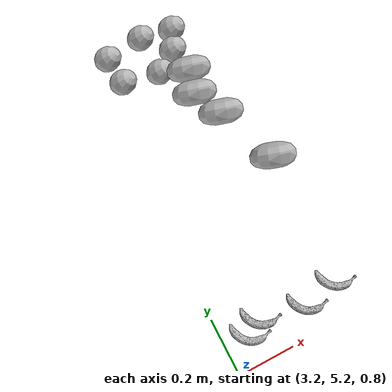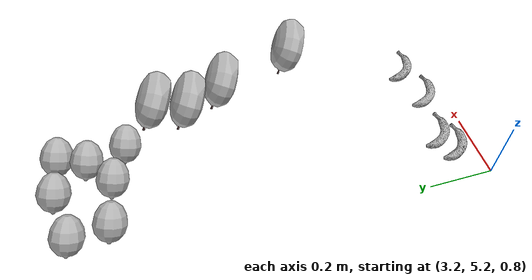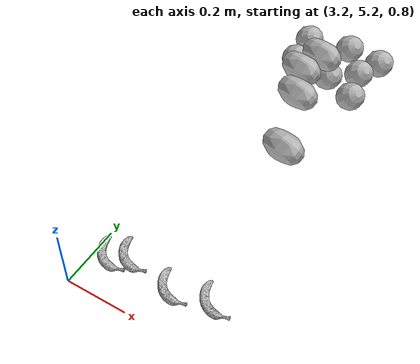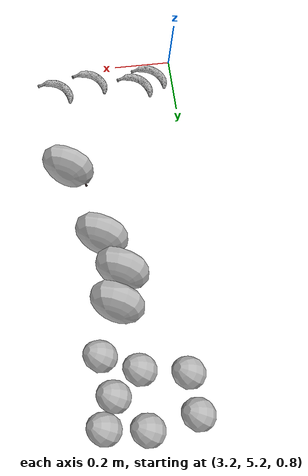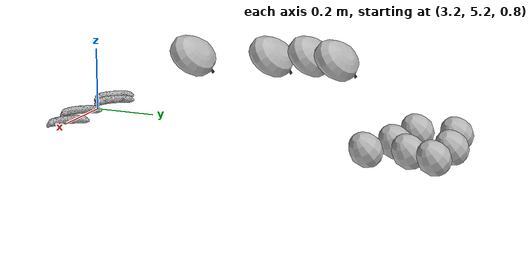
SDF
<sdf version="1.6">
 <world name="default">
  <model name="banana_clone">
   <link name="link_0">
    <inertial>
     <mass>1</mass>
     <inertia>
      <ixx>0.166667</ixx>
      <ixy>0</ixy>
      <ixz>0</ixz>
      <iyy>0.166667</iyy>
      <iyz>0</iyz>
      <izz>0.166667</izz>
     </inertia>
    </inertial>
    <visual name="visual">
     <geometry><mesh><uri>model://banana/meshes/banana.dae</uri><scale>1 1 1</scale></mesh></geometry>
    </visual>
    <collision name="collision">
     <geometry><mesh><uri>model://banana/meshes/banana.dae</uri><scale>1 1 1</scale></mesh></geometry>
     <surface>
      <friction>
       <ode><mu>1</mu><mu2>1</mu2><fdir1>0 0 0</fdir1><slip1>0</slip1><slip2>0</slip2></ode>
       <torsional>
        <coefficient>1</coefficient>
        <patch_radius>0</patch_radius>
        <surface_radius>0</surface_radius>
        <use_patch_radius>1</use_patch_radius>
        <ode><slip>0</slip></ode>
       </torsional>
      </friction>
      <bounce><restitution_coefficient>0</restitution_coefficient><threshold>1e+06</threshold></bounce>
      <contact>
       <collide_without_contact>0</collide_without_contact>
       <collide_without_contact_bitmask>1</collide_without_contact_bitmask>
       <collide_bitmask>1</collide_bitmask>
       <ode>
        <soft_cfm>0</soft_cfm>
        <soft_erp>0.2</soft_erp>
        <kp>1e+13</kp>
        <kd>1</kd>
        <max_vel>0.01</max_vel>
        <min_depth>0</min_depth>
       </ode>
       <bullet>
        <split_impulse>1</split_impulse>
        <split_impulse_penetration_threshold>-0.01</split_impulse_penetration_threshold>
        <soft_cfm>0</soft_cfm>
        <soft_erp>0.2</soft_erp>
        <kp>1e+13</kp>
        <kd>1</kd>
       </bullet>
      </contact>
     </surface>
    </collision>
   </link>
   <static>1</static>
   <pose>3.60533 5.30959 0.868134 0 -0 0</pose>
  </model>
  <model name="banana_clone_9">
   <link name="link_0">
    <inertial>
     <mass>1</mass>
     <inertia>
      <ixx>0.166667</ixx>
      <ixy>0</ixy>
      <ixz>0</ixz>
      <iyy>0.166667</iyy>
      <iyz>0</iyz>
      <izz>0.166667</izz>
     </inertia>
    </inertial>
    <visual name="visual">
     <geometry><mesh><uri>model://banana/meshes/banana.dae</uri><scale>1 1 1</scale></mesh></geometry>
    </visual>
    <collision name="collision">
     <geometry><mesh><uri>model://banana/meshes/banana.dae</uri><scale>1 1 1</scale></mesh></geometry>
     <surface>
      <friction>
       <ode><mu>1</mu><mu2>1</mu2><fdir1>0 0 0</fdir1><slip1>0</slip1><slip2>0</slip2></ode>
       <torsional>
        <coefficient>1</coefficient>
        <patch_radius>0</patch_radius>
        <surface_radius>0</surface_radius>
        <use_patch_radius>1</use_patch_radius>
        <ode><slip>0</slip></ode>
       </torsional>
      </friction>
      <bounce><restitution_coefficient>0</restitution_coefficient><threshold>1e+06</threshold></bounce>
      <contact>
       <collide_without_contact>0</collide_without_contact>
       <collide_without_contact_bitmask>1</collide_without_contact_bitmask>
       <collide_bitmask>1</collide_bitmask>
       <ode>
        <soft_cfm>0</soft_cfm>
        <soft_erp>0.2</soft_erp>
        <kp>1e+13</kp>
        <kd>1</kd>
        <max_vel>0.01</max_vel>
        <min_depth>0</min_depth>
       </ode>
       <bullet>
        <split_impulse>1</split_impulse>
        <split_impulse_penetration_threshold>-0.01</split_impulse_penetration_threshold>
        <soft_cfm>0</soft_cfm>
        <soft_erp>0.2</soft_erp>
        <kp>1e+13</kp>
        <kd>1</kd>
       </bullet>
      </contact>
     </surface>
    </collision>
   </link>
   <static>1</static>
   <pose>3.48243 5.28531 0.868134 0 -0 0</pose>
  </model>
  <model name="banana_clone_13">
   <link name="link_0">
    <inertial>
     <mass>1</mass>
     <inertia>
      <ixx>0.166667</ixx>
      <ixy>0</ixy>
      <ixz>0</ixz>
      <iyy>0.166667</iyy>
      <iyz>0</iyz>
      <izz>0.166667</izz>
     </inertia>
    </inertial>
    <visual name="visual">
     <geometry><mesh><uri>model://banana/meshes/banana.dae</uri><scale>1 1 1</scale></mesh></geometry>
    </visual>
    <collision name="collision">
     <geometry><mesh><uri>model://banana/meshes/banana.dae</uri><scale>1 1 1</scale></mesh></geometry>
     <surface>
      <friction>
       <ode><mu>1</mu><mu2>1</mu2><fdir1>0 0 0</fdir1><slip1>0</slip1><slip2>0</slip2></ode>
       <torsional>
        <coefficient>1</coefficient>
        <patch_radius>0</patch_radius>
        <surface_radius>0</surface_radius>
        <use_patch_radius>1</use_patch_radius>
        <ode><slip>0</slip></ode>
       </torsional>
      </friction>
      <bounce><restitution_coefficient>0</restitution_coefficient><threshold>1e+06</threshold></bounce>
      <contact>
       <collide_without_contact>0</collide_without_contact>
       <collide_without_contact_bitmask>1</collide_without_contact_bitmask>
       <collide_bitmask>1</collide_bitmask>
       <ode>
        <soft_cfm>0</soft_cfm>
        <soft_erp>0.2</soft_erp>
        <kp>1e+13</kp>
        <kd>1</kd>
        <max_vel>0.01</max_vel>
        <min_depth>0</min_depth>
       </ode>
       <bullet>
        <split_impulse>1</split_impulse>
        <split_impulse_penetration_threshold>-0.01</split_impulse_penetration_threshold>
        <soft_cfm>0</soft_cfm>
        <soft_erp>0.2</soft_erp>
        <kp>1e+13</kp>
        <kd>1</kd>
       </bullet>
      </contact>
     </surface>
    </collision>
   </link>
   <static>1</static>
   <pose>3.27114 5.28685 0.868134 0 -0 0</pose>
  </model>
  <model name="banana_clone_22">
   <link name="link_0">
    <inertial>
     <mass>1</mass>
     <inertia>
      <ixx>0.166667</ixx>
      <ixy>0</ixy>
      <ixz>0</ixz>
      <iyy>0.166667</iyy>
      <iyz>0</iyz>
      <izz>0.166667</izz>
     </inertia>
    </inertial>
    <visual name="visual">
     <geometry><mesh><uri>model://banana/meshes/banana.dae</uri><scale>1 1 1</scale></mesh></geometry>
    </visual>
    <collision name="collision">
     <geometry><mesh><uri>model://banana/meshes/banana.dae</uri><scale>1 1 1</scale></mesh></geometry>
     <surface>
      <friction>
       <ode><mu>1</mu><mu2>1</mu2><fdir1>0 0 0</fdir1><slip1>0</slip1><slip2>0</slip2></ode>
       <torsional>
        <coefficient>1</coefficient>
        <patch_radius>0</patch_radius>
        <surface_radius>0</surface_radius>
        <use_patch_radius>1</use_patch_radius>
        <ode><slip>0</slip></ode>
       </torsional>
      </friction>
      <bounce><restitution_coefficient>0</restitution_coefficient><threshold>1e+06</threshold></bounce>
      <contact>
       <collide_without_contact>0</collide_without_contact>
       <collide_without_contact_bitmask>1</collide_without_contact_bitmask>
       <collide_bitmask>1</collide_bitmask>
       <ode>
        <soft_cfm>0</soft_cfm>
        <soft_erp>0.2</soft_erp>
        <kp>1e+13</kp>
        <kd>1</kd>
        <max_vel>0.01</max_vel>
        <min_depth>0</min_depth>
       </ode>
       <bullet>
        <split_impulse>1</split_impulse>
        <split_impulse_penetration_threshold>-0.01</split_impulse_penetration_threshold>
        <soft_cfm>0</soft_cfm>
        <soft_erp>0.2</soft_erp>
        <kp>1e+13</kp>
        <kd>1</kd>
       </bullet>
      </contact>
     </surface>
    </collision>
   </link>
   <static>1</static>
   <pose>3.32533 5.31606 0.868134 0 -0 0</pose>
  </model>
  <model name="lime_clone_0">
   <link name="link_0">
    <inertial>
     <mass>1</mass>
     <inertia>
      <ixx>0.166667</ixx>
      <ixy>0</ixy>
      <ixz>0</ixz>
      <iyy>0.166667</iyy>
      <iyz>0</iyz>
      <izz>0.166667</izz>
     </inertia>
    </inertial>
    <visual name="visual">
     <geometry><mesh><uri>model://lime/meshes/lime.dae</uri><scale>1 1 1</scale></mesh></geometry>
    </visual>
    <collision name="collision">
     <geometry><mesh><uri>model://lime/meshes/lime.dae</uri><scale>1 1 1</scale></mesh></geometry>
     <surface>
      <friction>
       <ode><mu>1</mu><mu2>1</mu2><fdir1>0 0 0</fdir1><slip1>0</slip1><slip2>0</slip2></ode>
       <torsional>
        <coefficient>1</coefficient>
        <patch_radius>0</patch_radius>
        <surface_radius>0</surface_radius>
        <use_patch_radius>1</use_patch_radius>
        <ode><slip>0</slip></ode>
       </torsional>
      </friction>
      <bounce><restitution_coefficient>0</restitution_coefficient><threshold>1e+06</threshold></bounce>
      <contact>
       <collide_without_contact>0</collide_without_contact>
       <collide_without_contact_bitmask>1</collide_without_contact_bitmask>
       <collide_bitmask>1</collide_bitmask>
       <ode>
        <soft_cfm>0</soft_cfm>
        <soft_erp>0.2</soft_erp>
        <kp>1e+13</kp>
        <kd>1</kd>
        <max_vel>0.01</max_vel>
        <min_depth>0</min_depth>
       </ode>
       <bullet>
        <split_impulse>1</split_impulse>
        <split_impulse_penetration_threshold>-0.01</split_impulse_penetration_threshold>
        <soft_cfm>0</soft_cfm>
        <soft_erp>0.2</soft_erp>
        <kp>1e+13</kp>
        <kd>1</kd>
       </bullet>
      </contact>
     </surface>
    </collision>
   </link>
   <static>1</static>
   <pose>3.54528 6.2031 0.896084 0 -0 0</pose>
  </model>
  <model name="lime_clone_2">
   <link name="link_0">
    <inertial>
     <mass>1</mass>
     <inertia>
      <ixx>0.166667</ixx>
      <ixy>0</ixy>
      <ixz>0</ixz>
      <iyy>0.166667</iyy>
      <iyz>0</iyz>
      <izz>0.166667</izz>
     </inertia>
    </inertial>
    <visual name="visual">
     <geometry><mesh><uri>model://lime/meshes/lime.dae</uri><scale>1 1 1</scale></mesh></geometry>
    </visual>
    <collision name="collision">
     <geometry><mesh><uri>model://lime/meshes/lime.dae</uri><scale>1 1 1</scale></mesh></geometry>
     <surface>
      <friction>
       <ode><mu>1</mu><mu2>1</mu2><fdir1>0 0 0</fdir1><slip1>0</slip1><slip2>0</slip2></ode>
       <torsional>
        <coefficient>1</coefficient>
        <patch_radius>0</patch_radius>
        <surface_radius>0</surface_radius>
        <use_patch_radius>1</use_patch_radius>
        <ode><slip>0</slip></ode>
       </torsional>
      </friction>
      <bounce><restitution_coefficient>0</restitution_coefficient><threshold>1e+06</threshold></bounce>
      <contact>
       <collide_without_contact>0</collide_without_contact>
       <collide_without_contact_bitmask>1</collide_without_contact_bitmask>
       <collide_bitmask>1</collide_bitmask>
       <ode>
        <soft_cfm>0</soft_cfm>
        <soft_erp>0.2</soft_erp>
        <kp>1e+13</kp>
        <kd>1</kd>
        <max_vel>0.01</max_vel>
        <min_depth>0</min_depth>
       </ode>
       <bullet>
        <split_impulse>1</split_impulse>
        <split_impulse_penetration_threshold>-0.01</split_impulse_penetration_threshold>
        <soft_cfm>0</soft_cfm>
        <soft_erp>0.2</soft_erp>
        <kp>1e+13</kp>
        <kd>1</kd>
       </bullet>
      </contact>
     </surface>
    </collision>
   </link>
   <static>1</static>
   <pose>3.51821 6.31889 0.896084 0 -0 0</pose>
  </model>
  <model name="lime_clone_1">
   <link name="link_0">
    <inertial>
     <mass>1</mass>
     <inertia>
      <ixx>0.166667</ixx>
      <ixy>0</ixy>
      <ixz>0</ixz>
      <iyy>0.166667</iyy>
      <iyz>0</iyz>
      <izz>0.166667</izz>
     </inertia>
    </inertial>
    <visual name="visual">
     <geometry><mesh><uri>model://lime/meshes/lime.dae</uri><scale>1 1 1</scale></mesh></geometry>
    </visual>
    <collision name="collision">
     <geometry><mesh><uri>model://lime/meshes/lime.dae</uri><scale>1 1 1</scale></mesh></geometry>
     <surface>
      <friction>
       <ode><mu>1</mu><mu2>1</mu2><fdir1>0 0 0</fdir1><slip1>0</slip1><slip2>0</slip2></ode>
       <torsional>
        <coefficient>1</coefficient>
        <patch_radius>0</patch_radius>
        <surface_radius>0</surface_radius>
        <use_patch_radius>1</use_patch_radius>
        <ode><slip>0</slip></ode>
       </torsional>
      </friction>
      <bounce><restitution_coefficient>0</restitution_coefficient><threshold>1e+06</threshold></bounce>
      <contact>
       <collide_without_contact>0</collide_without_contact>
       <collide_without_contact_bitmask>1</collide_without_contact_bitmask>
       <collide_bitmask>1</collide_bitmask>
       <ode>
        <soft_cfm>0</soft_cfm>
        <soft_erp>0.2</soft_erp>
        <kp>1e+13</kp>
        <kd>1</kd>
        <max_vel>0.01</max_vel>
        <min_depth>0</min_depth>
       </ode>
       <bullet>
        <split_impulse>1</split_impulse>
        <split_impulse_penetration_threshold>-0.01</split_impulse_penetration_threshold>
        <soft_cfm>0</soft_cfm>
        <soft_erp>0.2</soft_erp>
        <kp>1e+13</kp>
        <kd>1</kd>
       </bullet>
      </contact>
     </surface>
    </collision>
   </link>
   <static>1</static>
   <pose>3.55424 6.40148 0.896084 0 -0 0</pose>
  </model>
  <model name="lime_clone_3">
   <link name="link_0">
    <inertial>
     <mass>1</mass>
     <inertia>
      <ixx>0.166667</ixx>
      <ixy>0</ixy>
      <ixz>0</ixz>
      <iyy>0.166667</iyy>
      <iyz>0</iyz>
      <izz>0.166667</izz>
     </inertia>
    </inertial>
    <visual name="visual">
     <geometry><mesh><uri>model://lime/meshes/lime.dae</uri><scale>1 1 1</scale></mesh></geometry>
    </visual>
    <collision name="collision">
     <geometry><mesh><uri>model://lime/meshes/lime.dae</uri><scale>1 1 1</scale></mesh></geometry>
     <surface>
      <friction>
       <ode><mu>1</mu><mu2>1</mu2><fdir1>0 0 0</fdir1><slip1>0</slip1><slip2>0</slip2></ode>
       <torsional>
        <coefficient>1</coefficient>
        <patch_radius>0</patch_radius>
        <surface_radius>0</surface_radius>
        <use_patch_radius>1</use_patch_radius>
        <ode><slip>0</slip></ode>
       </torsional>
      </friction>
      <bounce><restitution_coefficient>0</restitution_coefficient><threshold>1e+06</threshold></bounce>
      <contact>
       <collide_without_contact>0</collide_without_contact>
       <collide_without_contact_bitmask>1</collide_without_contact_bitmask>
       <collide_bitmask>1</collide_bitmask>
       <ode>
        <soft_cfm>0</soft_cfm>
        <soft_erp>0.2</soft_erp>
        <kp>1e+13</kp>
        <kd>1</kd>
        <max_vel>0.01</max_vel>
        <min_depth>0</min_depth>
       </ode>
       <bullet>
        <split_impulse>1</split_impulse>
        <split_impulse_penetration_threshold>-0.01</split_impulse_penetration_threshold>
        <soft_cfm>0</soft_cfm>
        <soft_erp>0.2</soft_erp>
        <kp>1e+13</kp>
        <kd>1</kd>
       </bullet>
      </contact>
     </surface>
    </collision>
   </link>
   <static>1</static>
   <pose>3.43211 6.41823 0.896084 0 -0 0</pose>
  </model>
  <model name="lime_clone_4">
   <link name="link_0">
    <inertial>
     <mass>1</mass>
     <inertia>
      <ixx>0.166667</ixx>
      <ixy>0</ixy>
      <ixz>0</ixz>
      <iyy>0.166667</iyy>
      <iyz>0</iyz>
      <izz>0.166667</izz>
     </inertia>
    </inertial>
    <visual name="visual">
     <geometry><mesh><uri>model://lime/meshes/lime.dae</uri><scale>1 1 1</scale></mesh></geometry>
    </visual>
    <collision name="collision">
     <geometry><mesh><uri>model://lime/meshes/lime.dae</uri><scale>1 1 1</scale></mesh></geometry>
     <surface>
      <friction>
       <ode><mu>1</mu><mu2>1</mu2><fdir1>0 0 0</fdir1><slip1>0</slip1><slip2>0</slip2></ode>
       <torsional>
        <coefficient>1</coefficient>
        <patch_radius>0</patch_radius>
        <surface_radius>0</surface_radius>
        <use_patch_radius>1</use_patch_radius>
        <ode><slip>0</slip></ode>
       </torsional>
      </friction>
      <bounce><restitution_coefficient>0</restitution_coefficient><threshold>1e+06</threshold></bounce>
      <contact>
       <collide_without_contact>0</collide_without_contact>
       <collide_without_contact_bitmask>1</collide_without_contact_bitmask>
       <collide_bitmask>1</collide_bitmask>
       <ode>
        <soft_cfm>0</soft_cfm>
        <soft_erp>0.2</soft_erp>
        <kp>1e+13</kp>
        <kd>1</kd>
        <max_vel>0.01</max_vel>
        <min_depth>0</min_depth>
       </ode>
       <bullet>
        <split_impulse>1</split_impulse>
        <split_impulse_penetration_threshold>-0.01</split_impulse_penetration_threshold>
        <soft_cfm>0</soft_cfm>
        <soft_erp>0.2</soft_erp>
        <kp>1e+13</kp>
        <kd>1</kd>
       </bullet>
      </contact>
     </surface>
    </collision>
   </link>
   <static>1</static>
   <pose>3.43423 6.2537 0.896084 0 -0 0</pose>
  </model>
  <model name="lime_clone_5">
   <link name="link_0">
    <inertial>
     <mass>1</mass>
     <inertia>
      <ixx>0.166667</ixx>
      <ixy>0</ixy>
      <ixz>0</ixz>
      <iyy>0.166667</iyy>
      <iyz>0</iyz>
      <izz>0.166667</izz>
     </inertia>
    </inertial>
    <visual name="visual">
     <geometry><mesh><uri>model://lime/meshes/lime.dae</uri><scale>1 1 1</scale></mesh></geometry>
    </visual>
    <collision name="collision">
     <geometry><mesh><uri>model://lime/meshes/lime.dae</uri><scale>1 1 1</scale></mesh></geometry>
     <surface>
      <friction>
       <ode><mu>1</mu><mu2>1</mu2><fdir1>0 0 0</fdir1><slip1>0</slip1><slip2>0</slip2></ode>
       <torsional>
        <coefficient>1</coefficient>
        <patch_radius>0</patch_radius>
        <surface_radius>0</surface_radius>
        <use_patch_radius>1</use_patch_radius>
        <ode><slip>0</slip></ode>
       </torsional>
      </friction>
      <bounce><restitution_coefficient>0</restitution_coefficient><threshold>1e+06</threshold></bounce>
      <contact>
       <collide_without_contact>0</collide_without_contact>
       <collide_without_contact_bitmask>1</collide_without_contact_bitmask>
       <collide_bitmask>1</collide_bitmask>
       <ode>
        <soft_cfm>0</soft_cfm>
        <soft_erp>0.2</soft_erp>
        <kp>1e+13</kp>
        <kd>1</kd>
        <max_vel>0.01</max_vel>
        <min_depth>0</min_depth>
       </ode>
       <bullet>
        <split_impulse>1</split_impulse>
        <split_impulse_penetration_threshold>-0.01</split_impulse_penetration_threshold>
        <soft_cfm>0</soft_cfm>
        <soft_erp>0.2</soft_erp>
        <kp>1e+13</kp>
        <kd>1</kd>
       </bullet>
      </contact>
     </surface>
    </collision>
   </link>
   <static>1</static>
   <pose>3.29477 6.27779 0.896084 0 -0 0</pose>
  </model>
  <model name="lime_clone_6">
   <link name="link_0">
    <inertial>
     <mass>1</mass>
     <inertia>
      <ixx>0.166667</ixx>
      <ixy>0</ixy>
      <ixz>0</ixz>
      <iyy>0.166667</iyy>
      <iyz>0</iyz>
      <izz>0.166667</izz>
     </inertia>
    </inertial>
    <visual name="visual">
     <geometry><mesh><uri>model://lime/meshes/lime.dae</uri><scale>1 1 1</scale></mesh></geometry>
    </visual>
    <collision name="collision">
     <geometry><mesh><uri>model://lime/meshes/lime.dae</uri><scale>1 1 1</scale></mesh></geometry>
     <surface>
      <friction>
       <ode><mu>1</mu><mu2>1</mu2><fdir1>0 0 0</fdir1><slip1>0</slip1><slip2>0</slip2></ode>
       <torsional>
        <coefficient>1</coefficient>
        <patch_radius>0</patch_radius>
        <surface_radius>0</surface_radius>
        <use_patch_radius>1</use_patch_radius>
        <ode><slip>0</slip></ode>
       </torsional>
      </friction>
      <bounce><restitution_coefficient>0</restitution_coefficient><threshold>1e+06</threshold></bounce>
      <contact>
       <collide_without_contact>0</collide_without_contact>
       <collide_without_contact_bitmask>1</collide_without_contact_bitmask>
       <collide_bitmask>1</collide_bitmask>
       <ode>
        <soft_cfm>0</soft_cfm>
        <soft_erp>0.2</soft_erp>
        <kp>1e+13</kp>
        <kd>1</kd>
        <max_vel>0.01</max_vel>
        <min_depth>0</min_depth>
       </ode>
       <bullet>
        <split_impulse>1</split_impulse>
        <split_impulse_penetration_threshold>-0.01</split_impulse_penetration_threshold>
        <soft_cfm>0</soft_cfm>
        <soft_erp>0.2</soft_erp>
        <kp>1e+13</kp>
        <kd>1</kd>
       </bullet>
      </contact>
     </surface>
    </collision>
   </link>
   <static>1</static>
   <pose>3.28508 6.39278 0.896084 0 -0 0</pose>
  </model>
  <model name="mango">
   <link name="link_0">
    <inertial>
     <mass>1</mass>
     <inertia>
      <ixx>0.166667</ixx>
      <ixy>0</ixy>
      <ixz>0</ixz>
      <iyy>0.166667</iyy>
      <iyz>0</iyz>
      <izz>0.166667</izz>
     </inertia>
    </inertial>
    <visual name="visual">
     <geometry><mesh><uri>model://mango/meshes/mango.dae</uri><scale>1 1 1</scale></mesh></geometry>
    </visual>
    <collision name="collision">
     <geometry><mesh><uri>model://mango/meshes/mango.dae</uri><scale>1 1 1</scale></mesh></geometry>
     <surface>
      <friction>
       <ode><mu>1</mu><mu2>1</mu2><fdir1>0 0 0</fdir1><slip1>0</slip1><slip2>0</slip2></ode>
       <torsional>
        <coefficient>1</coefficient>
        <patch_radius>0</patch_radius>
        <surface_radius>0</surface_radius>
        <use_patch_radius>1</use_patch_radius>
        <ode><slip>0</slip></ode>
       </torsional>
      </friction>
      <bounce><restitution_coefficient>0</restitution_coefficient><threshold>1e+06</threshold></bounce>
      <contact>
       <collide_without_contact>0</collide_without_contact>
       <collide_without_contact_bitmask>1</collide_without_contact_bitmask>
       <collide_bitmask>1</collide_bitmask>
       <ode>
        <soft_cfm>0</soft_cfm>
        <soft_erp>0.2</soft_erp>
        <kp>1e+13</kp>
        <kd>1</kd>
        <max_vel>0.01</max_vel>
        <min_depth>0</min_depth>
       </ode>
       <bullet>
        <split_impulse>1</split_impulse>
        <split_impulse_penetration_threshold>-0.01</split_impulse_penetration_threshold>
        <soft_cfm>0</soft_cfm>
        <soft_erp>0.2</soft_erp>
        <kp>1e+13</kp>
        <kd>1</kd>
       </bullet>
      </contact>
     </surface>
    </collision>
   </link>
   <static>1</static>
   <pose>3.53398 5.93628 1.08404 0 -0 0</pose>
  </model>
  <model name="mango_clone_1">
   <link name="link_0">
    <inertial>
     <mass>1</mass>
     <inertia>
      <ixx>0.166667</ixx>
      <ixy>0</ixy>
      <ixz>0</ixz>
      <iyy>0.166667</iyy>
      <iyz>0</iyz>
      <izz>0.166667</izz>
     </inertia>
    </inertial>
    <visual name="visual">
     <geometry><mesh><uri>model://mango/meshes/mango.dae</uri><scale>1 1 1</scale></mesh></geometry>
    </visual>
    <collision name="collision">
     <geometry><mesh><uri>model://mango/meshes/mango.dae</uri><scale>1 1 1</scale></mesh></geometry>
     <surface>
      <friction>
       <ode><mu>1</mu><mu2>1</mu2><fdir1>0 0 0</fdir1><slip1>0</slip1><slip2>0</slip2></ode>
       <torsional>
        <coefficient>1</coefficient>
        <patch_radius>0</patch_radius>
        <surface_radius>0</surface_radius>
        <use_patch_radius>1</use_patch_radius>
        <ode><slip>0</slip></ode>
       </torsional>
      </friction>
      <bounce><restitution_coefficient>0</restitution_coefficient><threshold>1e+06</threshold></bounce>
      <contact>
       <collide_without_contact>0</collide_without_contact>
       <collide_without_contact_bitmask>1</collide_without_contact_bitmask>
       <collide_bitmask>1</collide_bitmask>
       <ode>
        <soft_cfm>0</soft_cfm>
        <soft_erp>0.2</soft_erp>
        <kp>1e+13</kp>
        <kd>1</kd>
        <max_vel>0.01</max_vel>
        <min_depth>0</min_depth>
       </ode>
       <bullet>
        <split_impulse>1</split_impulse>
        <split_impulse_penetration_threshold>-0.01</split_impulse_penetration_threshold>
        <soft_cfm>0</soft_cfm>
        <soft_erp>0.2</soft_erp>
        <kp>1e+13</kp>
        <kd>1</kd>
       </bullet>
      </contact>
     </surface>
    </collision>
   </link>
   <static>1</static>
   <pose>3.51286 6.12456 1.08404 0 -0 0</pose>
  </model>
  <model name="mango_clone_2">
   <link name="link_0">
    <inertial>
     <mass>1</mass>
     <inertia>
      <ixx>0.166667</ixx>
      <ixy>0</ixy>
      <ixz>0</ixz>
      <iyy>0.166667</iyy>
      <iyz>0</iyz>
      <izz>0.166667</izz>
     </inertia>
    </inertial>
    <visual name="visual">
     <geometry><mesh><uri>model://mango/meshes/mango.dae</uri><scale>1 1 1</scale></mesh></geometry>
    </visual>
    <collision name="collision">
     <geometry><mesh><uri>model://mango/meshes/mango.dae</uri><scale>1 1 1</scale></mesh></geometry>
     <surface>
      <friction>
       <ode><mu>1</mu><mu2>1</mu2><fdir1>0 0 0</fdir1><slip1>0</slip1><slip2>0</slip2></ode>
       <torsional>
        <coefficient>1</coefficient>
        <patch_radius>0</patch_radius>
        <surface_radius>0</surface_radius>
        <use_patch_radius>1</use_patch_radius>
        <ode><slip>0</slip></ode>
       </torsional>
      </friction>
      <bounce><restitution_coefficient>0</restitution_coefficient><threshold>1e+06</threshold></bounce>
      <contact>
       <collide_without_contact>0</collide_without_contact>
       <collide_without_contact_bitmask>1</collide_without_contact_bitmask>
       <collide_bitmask>1</collide_bitmask>
       <ode>
        <soft_cfm>0</soft_cfm>
        <soft_erp>0.2</soft_erp>
        <kp>1e+13</kp>
        <kd>1</kd>
        <max_vel>0.01</max_vel>
        <min_depth>0</min_depth>
       </ode>
       <bullet>
        <split_impulse>1</split_impulse>
        <split_impulse_penetration_threshold>-0.01</split_impulse_penetration_threshold>
        <soft_cfm>0</soft_cfm>
        <soft_erp>0.2</soft_erp>
        <kp>1e+13</kp>
        <kd>1</kd>
       </bullet>
      </contact>
     </surface>
    </collision>
   </link>
   <static>1</static>
   <pose>3.48981 6.03714 1.08404 0 -0 0</pose>
  </model>
  <model name="mango_clone_3">
   <link name="link_0">
    <inertial>
     <mass>1</mass>
     <inertia>
      <ixx>0.166667</ixx>
      <ixy>0</ixy>
      <ixz>0</ixz>
      <iyy>0.166667</iyy>
      <iyz>0</iyz>
      <izz>0.166667</izz>
     </inertia>
    </inertial>
    <visual name="visual">
     <geometry><mesh><uri>model://mango/meshes/mango.dae</uri><scale>1 1 1</scale></mesh></geometry>
    </visual>
    <collision name="collision">
     <geometry><mesh><uri>model://mango/meshes/mango.dae</uri><scale>1 1 1</scale></mesh></geometry>
     <surface>
      <friction>
       <ode><mu>1</mu><mu2>1</mu2><fdir1>0 0 0</fdir1><slip1>0</slip1><slip2>0</slip2></ode>
       <torsional>
        <coefficient>1</coefficient>
        <patch_radius>0</patch_radius>
        <surface_radius>0</surface_radius>
        <use_patch_radius>1</use_patch_radius>
        <ode><slip>0</slip></ode>
       </torsional>
      </friction>
      <bounce><restitution_coefficient>0</restitution_coefficient><threshold>1e+06</threshold></bounce>
      <contact>
       <collide_without_contact>0</collide_without_contact>
       <collide_without_contact_bitmask>1</collide_without_contact_bitmask>
       <collide_bitmask>1</collide_bitmask>
       <ode>
        <soft_cfm>0</soft_cfm>
        <soft_erp>0.2</soft_erp>
        <kp>1e+13</kp>
        <kd>1</kd>
        <max_vel>0.01</max_vel>
        <min_depth>0</min_depth>
       </ode>
       <bullet>
        <split_impulse>1</split_impulse>
        <split_impulse_penetration_threshold>-0.01</split_impulse_penetration_threshold>
        <soft_cfm>0</soft_cfm>
        <soft_erp>0.2</soft_erp>
        <kp>1e+13</kp>
        <kd>1</kd>
       </bullet>
      </contact>
     </surface>
    </collision>
   </link>
   <static>1</static>
   <pose>3.60805 5.72492 1.08404 0 -0 0</pose>
  </model>
 </world>
</sdf>
